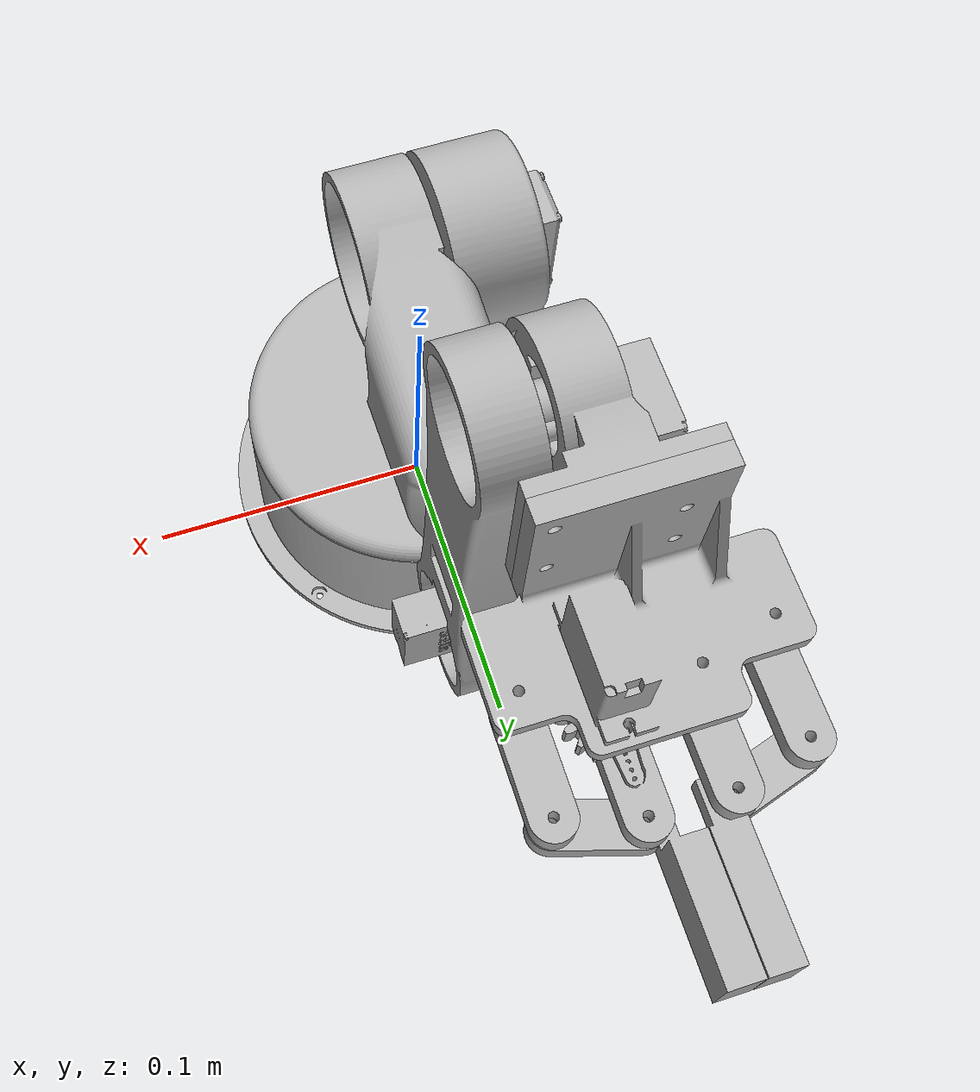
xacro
<?xml version="1.0"?>
<robot xmlns:xacro="http://www.ros.org/wiki/xacro" name="robotic_arm_pjbl">
  <xacro:arg name="use_sim" default="false"/>
  <xacro:arg name="controllers_file" default=""/>

  <xacro:include filename="$(find robotic_arm_pjbl_description)/urdf/robot_body.urdf"/>
  <xacro:include filename="$(find robotic_arm_pjbl_description)/urdf/ros2_control.xacro"/>

  <link name="world"/>
  <joint name="world_fixed" type="fixed">
    <parent link="world"/><child link="base_link"/>
  </joint>

  <xacro:arm_ros2_control use_sim="$(arg use_sim)" controllers_file="$(arg controllers_file)"/>
</robot>

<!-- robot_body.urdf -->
<robot name="Robot_Arm">
  <material name="silver">
    <color rgba="0.700 0.700 0.700 1.000" />
  </material>
  <link name="base_link">
    <inertial>
      <origin rpy="0 0 0" xyz="0.000619 0.000000 0.018717" />
      <mass value="1.114575279513355" />
      <inertia ixx="1.6127e-03" ixy="2.0748e-12" ixz="-1.0808e-05" iyy="2.0397e-03" iyz="1.2818e-12" izz="3.0906e-03" />
    </inertial>
    <visual>
      <origin rpy="0 0 0" xyz="0 0 0" />
      <geometry>
        <mesh filename="package://robotic_arm_pjbl_description/meshes/base_link.stl" scale="0.001 0.001 0.001" />
      </geometry>
      <material name="silver" />
    </visual>
    <collision>
      <origin rpy="0 0 0" xyz="0 0 0" />
      <geometry>
        <mesh filename="package://robotic_arm_pjbl_description/meshes/base_link.stl" scale="0.001 0.001 0.001" />
      </geometry>
    </collision>
  </link>
  <link name="mg996R_v2_v7_1">
    <inertial>
      <origin rpy="0 0 0" xyz="-0.024374 -0.005000 -0.008802" />
      <mass value="0.24550059914585104" />
      <inertia ixx="3.7764e-05" ixy="-3.7463e-10" ixz="-5.9967e-07" iyy="6.3908e-05" iyz="1.5918e-10" izz="4.2364e-05" />
    </inertial>
    <visual>
      <origin rpy="0 0 0" xyz="-0.0145 -0.005 -0.035" />
      <geometry>
        <mesh filename="package://robotic_arm_pjbl_description/meshes/mg996R_v2_v7_1.stl" scale="0.001 0.001 0.001" />
      </geometry>
      <material name="silver" />
    </visual>
    <collision>
      <origin rpy="0 0 0" xyz="-0.0145 -0.005 -0.035" />
      <geometry>
        <mesh filename="package://robotic_arm_pjbl_description/meshes/mg996R_v2_v7_1.stl" scale="0.001 0.001 0.001" />
      </geometry>
    </collision>
  </link>
  <link name="mg996_arm_2pad_v1__1__1">
    <inertial>
      <origin rpy="0 0 0" xyz="0.000000 0.000006 0.000273" />
      <mass value="0.006005329915614658" />
      <inertia ixx="5.5260e-07" ixy="1.9079e-15" ixz="6.4677e-16" iyy="4.5595e-08" iyz="1.4501e-15" izz="5.7984e-07" />
    </inertial>
    <visual>
      <origin rpy="0 0 0" xyz="-0.0 -0.0 -0.0505" />
      <geometry>
        <mesh filename="package://robotic_arm_pjbl_description/meshes/mg996_arm_2pad_v1__1__1.stl" scale="0.001 0.001 0.001" />
      </geometry>
      <material name="silver" />
    </visual>
    <collision>
      <origin rpy="0 0 0" xyz="-0.0 -0.0 -0.0505" />
      <geometry>
        <mesh filename="package://robotic_arm_pjbl_description/meshes/mg996_arm_2pad_v1__1__1.stl" scale="0.001 0.001 0.001" />
      </geometry>
    </collision>
  </link>
  <link name="Tutup__Base_v11_1">
    <inertial>
      <origin rpy="0 0 0" xyz="-0.009973 -0.007147 0.027090" />
      <mass value="0.7070663239380128" />
      <inertia ixx="1.1866e-03" ixy="-4.0674e-05" ixz="1.4969e-04" iyy="1.1033e-03" iyz="1.9334e-04" izz="8.0066e-04" />
    </inertial>
    <visual>
      <origin rpy="0 0 0" xyz="-0.0 -6e-06 -0.0532" />
      <geometry>
        <mesh filename="package://robotic_arm_pjbl_description/meshes/Tutup__Base_v11_1.stl" scale="0.001 0.001 0.001" />
      </geometry>
      <material name="silver" />
    </visual>
    <collision>
      <origin rpy="0 0 0" xyz="-0.0 -6e-06 -0.0532" />
      <geometry>
        <mesh filename="package://robotic_arm_pjbl_description/meshes/Tutup__Base_v11_1.stl" scale="0.001 0.001 0.001" />
      </geometry>
    </collision>
  </link>
  <link name="mg996_arm_2pad_v1_1">
    <inertial>
      <origin rpy="0 0 0" xyz="-0.000221 0.000163 0.000000" />
      <mass value="0.006005329915614658" />
      <inertia ixx="5.7984e-07" ixy="-1.4192e-15" ixz="-2.1369e-15" iyy="4.5609e-08" iyz="-2.6547e-09" izz="5.5259e-07" />
    </inertial>
    <visual>
      <origin rpy="0 0 0" xyz="0.006406 0.020205 -0.122346" />
      <geometry>
        <mesh filename="package://robotic_arm_pjbl_description/meshes/mg996_arm_2pad_v1_1.stl" scale="0.001 0.001 0.001" />
      </geometry>
      <material name="silver" />
    </visual>
    <collision>
      <origin rpy="0 0 0" xyz="0.006406 0.020205 -0.122346" />
      <geometry>
        <mesh filename="package://robotic_arm_pjbl_description/meshes/mg996_arm_2pad_v1_1.stl" scale="0.001 0.001 0.001" />
      </geometry>
    </collision>
  </link>
  <link name="Link_2_v15_1">
    <inertial>
      <origin rpy="0 0 0" xyz="0.005973 0.057708 0.000453" />
      <mass value="1.1593082559359793" />
      <inertia ixx="2.0213e-03" ixy="3.6090e-05" ixz="6.7725e-07" iyy="3.4611e-04" iyz="-5.9692e-06" izz="1.8724e-03" />
    </inertial>
    <visual>
      <origin rpy="0 0 0" xyz="0.003707 0.020139 -0.122346" />
      <geometry>
        <mesh filename="package://robotic_arm_pjbl_description/meshes/Link_2_v15_1.stl" scale="0.001 0.001 0.001" />
      </geometry>
      <material name="silver" />
    </visual>
    <collision>
      <origin rpy="0 0 0" xyz="0.003707 0.020139 -0.122346" />
      <geometry>
        <mesh filename="package://robotic_arm_pjbl_description/meshes/Link_2_v15_1.stl" scale="0.001 0.001 0.001" />
      </geometry>
    </collision>
  </link>
  <link name="MG90S_Servo_Horn__2_spork__v1_1">
    <inertial>
      <origin rpy="0 0 0" xyz="0.003641 0.020481 -0.068052" />
      <mass value="0.0023293743845412967" />
      <inertia ixx="1.4281e-07" ixy="3.7628e-15" ixz="-1.8397e-15" iyy="8.2114e-09" iyz="-6.8679e-10" izz="1.3937e-07" />
    </inertial>
    <visual>
      <origin rpy="0 0 0" xyz="-0.002729 -0.084475 -0.191053" />
      <geometry>
        <mesh filename="package://robotic_arm_pjbl_description/meshes/MG90S_Servo_Horn__2_spork__v1_1.stl" scale="0.001 0.001 0.001" />
      </geometry>
      <material name="silver" />
    </visual>
    <collision>
      <origin rpy="0 0 0" xyz="-0.002729 -0.084475 -0.191053" />
      <geometry>
        <mesh filename="package://robotic_arm_pjbl_description/meshes/MG90S_Servo_Horn__2_spork__v1_1.stl" scale="0.001 0.001 0.001" />
      </geometry>
    </collision>
  </link>
  <link name="MG90S_Servo_Horn__2_spork__v1__1__1">
    <inertial>
      <origin rpy="0 0 0" xyz="0.004089 -0.098038 0.098446" />
      <mass value="0.0023293743845412967" />
      <inertia ixx="1.4281e-07" ixy="7.8980e-16" ixz="1.1864e-15" iyy="1.3937e-07" iyz="6.8679e-10" izz="8.2114e-09" />
    </inertial>
    <visual>
      <origin rpy="0 0 0" xyz="-0.012981 -0.202346 -0.149323" />
      <geometry>
        <mesh filename="package://robotic_arm_pjbl_description/meshes/MG90S_Servo_Horn__2_spork__v1__1__1.stl" scale="0.001 0.001 0.001" />
      </geometry>
      <material name="silver" />
    </visual>
    <collision>
      <origin rpy="0 0 0" xyz="-0.012981 -0.202346 -0.149323" />
      <geometry>
        <mesh filename="package://robotic_arm_pjbl_description/meshes/MG90S_Servo_Horn__2_spork__v1__1__1.stl" scale="0.001 0.001 0.001" />
      </geometry>
    </collision>
  </link>
  <link name="Gripper_Paralel_SG90_M5_v5_1">
    <inertial>
      <origin rpy="0 0 0" xyz="0.029393 -0.083535 0.069537" />
      <mass value="0.18310530252689874" />
      <inertia ixx="5.7390e-05" ixy="-3.7889e-06" ixz="-5.3392e-07" iyy="7.5492e-05" iyz="1.5480e-05" izz="7.4260e-05" />
    </inertial>
    <visual>
      <origin rpy="0 0 0" xyz="0.027008 -0.232391 -0.168029" />
      <geometry>
        <mesh filename="package://robotic_arm_pjbl_description/meshes/Gripper_Paralel_SG90_M5_v5_1.stl" scale="0.001 0.001 0.001" />
      </geometry>
      <material name="silver" />
    </visual>
    <collision>
      <origin rpy="0 0 0" xyz="0.027008 -0.232391 -0.168029" />
      <geometry>
        <mesh filename="package://robotic_arm_pjbl_description/meshes/Gripper_Paralel_SG90_M5_v5_1.stl" scale="0.001 0.001 0.001" />
      </geometry>
    </collision>
  </link>
  <link name="link_3_v8_1">
    <inertial>
      <origin rpy="0 0 0" xyz="-0.000346 0.027380 -0.007778" />
      <mass value="0.5013830172546899" />
      <inertia ixx="8.1084e-04" ixy="-3.0076e-08" ixz="-8.6448e-06" iyy="7.6865e-04" iyz="3.5065e-06" izz="7.9942e-05" />
    </inertial>
    <visual>
      <origin rpy="0 0 0" xyz="-0.018357 -0.077013 -0.19383" />
      <geometry>
        <mesh filename="package://robotic_arm_pjbl_description/meshes/link_3_v8_1.stl" scale="0.001 0.001 0.001" />
      </geometry>
      <material name="silver" />
    </visual>
    <collision>
      <origin rpy="0 0 0" xyz="-0.018357 -0.077013 -0.19383" />
      <geometry>
        <mesh filename="package://robotic_arm_pjbl_description/meshes/link_3_v8_1.stl" scale="0.001 0.001 0.001" />
      </geometry>
    </collision>
  </link>
  <link name="Mounting_Gripper_v10_1">
    <inertial>
      <origin rpy="0 0 0" xyz="0.005278 -0.074495 0.097622" />
      <mass value="0.1387810088485666" />
      <inertia ixx="5.3073e-05" ixy="1.1204e-06" ixz="6.6532e-08" iyy="3.2264e-05" iyz="-3.8630e-08" izz="4.3861e-05" />
    </inertial>
    <visual>
      <origin rpy="0 0 0" xyz="0.004351 -0.19365 -0.150243" />
      <geometry>
        <mesh filename="package://robotic_arm_pjbl_description/meshes/Mounting_Gripper_v10_1.stl" scale="0.001 0.001 0.001" />
      </geometry>
      <material name="silver" />
    </visual>
    <collision>
      <origin rpy="0 0 0" xyz="0.004351 -0.19365 -0.150243" />
      <geometry>
        <mesh filename="package://robotic_arm_pjbl_description/meshes/Mounting_Gripper_v10_1.stl" scale="0.001 0.001 0.001" />
      </geometry>
    </collision>
  </link>
  <link name="MG90S_v5_1">
    <inertial>
      <origin rpy="0 0 0" xyz="0.017835 -0.000089 0.004771" />
      <mass value="0.022767916386716793" />
      <inertia ixx="1.8048e-06" ixy="1.9830e-09" ixz="-2.2121e-07" iyy="3.1547e-06" iyz="-2.8523e-11" izz="2.1095e-06" />
    </inertial>
    <visual>
      <origin rpy="0 0 0" xyz="-0.007150 -0.105000 -0.123000" />
      <geometry>
        <mesh filename="package://robotic_arm_pjbl_description/meshes/MG90S_v5_1.stl" scale="0.001 0.001 0.001" />
      </geometry>
      <material name="silver" />
    </visual>
    <collision>
      <origin rpy="0 0 0" xyz="-0.007150 -0.105000 -0.123000" />
      <geometry>
        <mesh filename="package://robotic_arm_pjbl_description/meshes/MG90S_v5_1.stl" scale="0.001 0.001 0.001" />
      </geometry>
    </collision>
  </link>
  <link name="MG90S_v1_1">
    <inertial>
      <origin rpy="0 0 0" xyz="-0.020595 0.004779 -0.000026" />
      <mass value="0.02276801022285205" />
      <inertia ixx="1.8049e-06" ixy="2.2122e-07" ixz="3.3356e-10" iyy="2.1096e-06" iyz="-1.0973e-08" izz="3.1546e-06" />
    </inertial>
    <visual>
      <origin rpy="0 0 0" xyz="-0.016250 -0.104300 -0.247800" />
      <geometry>
        <mesh filename="package://robotic_arm_pjbl_description/meshes/MG90S_v1_1.stl" scale="0.001 0.001 0.001" />
      </geometry>
      <material name="silver" />
    </visual>
    <collision>
      <origin rpy="0 0 0" xyz="-0.016250 -0.104300 -0.247800" />
      <geometry>
        <mesh filename="package://robotic_arm_pjbl_description/meshes/MG90S_v1_1.stl" scale="0.001 0.001 0.001" />
      </geometry>
    </collision>
  </link>
  <link name="mg996R_v2_v7__1__1">
    <inertial>
      <origin rpy="0 0 0" xyz="-0.011579 -0.004386 -0.024399" />
      <mass value="0.24550059914585104" />
      <inertia ixx="4.2364e-05" ixy="2.9807e-09" ixz="-5.9966e-07" iyy="6.3907e-05" iyz="1.3726e-07" izz="3.7765e-05" />
    </inertial>
    <visual>
      <origin rpy="0 0 0" xyz="0.019623 0.015604 -0.136878" />
      <geometry>
        <mesh filename="package://robotic_arm_pjbl_description/meshes/mg996R_v2_v7__1__1.stl" scale="0.001 0.001 0.001" />
      </geometry>
      <material name="silver" />
    </visual>
    <collision>
      <origin rpy="0 0 0" xyz="0.019623 0.015604 -0.136878" />
      <geometry>
        <mesh filename="package://robotic_arm_pjbl_description/meshes/mg996R_v2_v7__1__1.stl" scale="0.001 0.001 0.001" />
      </geometry>
    </collision>
  </link>
  <link name="gripper_gear_a_1">
    <inertial>
      <origin rpy="0 0 0" xyz="0.000022 0.008095 -0.001013" />
      <mass value="0.023262242930303698" />
      <inertia ixx="2.8852e-06" ixy="-9.5985e-09" ixz="4.2138e-11" iyy="5.2168e-07" iyz="1.3670e-08" izz="3.2490e-06" />
    </inertial>
    <visual>
      <origin rpy="0 0 0" xyz="-0.010800 -0.164110 -0.216730" />
      <geometry>
        <mesh filename="package://robotic_arm_pjbl_description/meshes/gripper_gear_a_1.stl" scale="0.001 0.001 0.001" />
      </geometry>
      <material name="silver" />
    </visual>
    <collision>
      <origin rpy="0 0 0" xyz="-0.010800 -0.164110 -0.216730" />
      <geometry>
        <mesh filename="package://robotic_arm_pjbl_description/meshes/gripper_gear_a_1.stl" scale="0.001 0.001 0.001" />
      </geometry>
    </collision>
  </link>
  <link name="gripper_gear_b_1">
    <inertial>
      <origin rpy="0 0 0" xyz="-0.000044 0.008349 -0.001099" />
      <mass value="0.02378380547257021" />
      <inertia ixx="2.9072e-06" ixy="9.9205e-09" ixz="5.1941e-11" iyy="5.2436e-07" iyz="-1.4474e-08" izz="3.2887e-06" />
    </inertial>
    <visual>
      <origin rpy="0 0 0" xyz="0.009400 -0.164110 -0.216730" />
      <geometry>
        <mesh filename="package://robotic_arm_pjbl_description/meshes/gripper_gear_b_1.stl" scale="0.001 0.001 0.001" />
      </geometry>
      <material name="silver" />
    </visual>
    <collision>
      <origin rpy="0 0 0" xyz="0.009400 -0.164110 -0.216730" />
      <geometry>
        <mesh filename="package://robotic_arm_pjbl_description/meshes/gripper_gear_b_1.stl" scale="0.001 0.001 0.001" />
      </geometry>
    </collision>
  </link>
  <link name="gripper_link_left_1">
    <inertial>
      <origin rpy="0 0 0" xyz="-0.000001 0.012772 -0.001396" />
      <mass value="0.016717941483359883" />
      <inertia ixx="1.6063e-06" ixy="-5.7333e-09" ixz="-3.0020e-11" iyy="2.1413e-07" iyz="-7.8850e-09" izz="1.7200e-06" />
    </inertial>
    <visual>
      <origin rpy="0 0 0" xyz="-0.030030 -0.158480 -0.217020" />
      <geometry>
        <mesh filename="package://robotic_arm_pjbl_description/meshes/gripper_link_left_1.stl" scale="0.001 0.001 0.001" />
      </geometry>
      <material name="silver" />
    </visual>
    <collision>
      <origin rpy="0 0 0" xyz="-0.030030 -0.158480 -0.217020" />
      <geometry>
        <mesh filename="package://robotic_arm_pjbl_description/meshes/gripper_link_left_1.stl" scale="0.001 0.001 0.001" />
      </geometry>
    </collision>
  </link>
  <link name="gripper_link_right_1">
    <inertial>
      <origin rpy="0 0 0" xyz="0.000001 0.012782 -0.001396" />
      <mass value="0.016717941483359845" />
      <inertia ixx="1.6063e-06" ixy="5.7334e-09" ixz="3.0035e-11" iyy="2.1413e-07" iyz="-7.8850e-09" izz="1.7200e-06" />
    </inertial>
    <visual>
      <origin rpy="0 0 0" xyz="0.028630 -0.158470 -0.217020" />
      <geometry>
        <mesh filename="package://robotic_arm_pjbl_description/meshes/gripper_link_right_1.stl" scale="0.001 0.001 0.001" />
      </geometry>
      <material name="silver" />
    </visual>
    <collision>
      <origin rpy="0 0 0" xyz="0.028630 -0.158470 -0.217020" />
      <geometry>
        <mesh filename="package://robotic_arm_pjbl_description/meshes/gripper_link_right_1.stl" scale="0.001 0.001 0.001" />
      </geometry>
    </collision>
  </link>
  <link name="gripper_finger_left_1">
    <inertial>
      <origin rpy="0 0 0" xyz="-0.001489 0.014975 -0.001265" />
      <mass value="0.051741877862863876" />
      <inertia ixx="1.1089e-05" ixy="4.0169e-06" ixz="8.5147e-07" iyy="4.7434e-06" iyz="-1.5048e-06" izz="1.3300e-05" />
    </inertial>
    <visual>
      <origin rpy="0 0 0" xyz="-0.010800 -0.189280 -0.213950" />
      <geometry>
        <mesh filename="package://robotic_arm_pjbl_description/meshes/gripper_finger_left_1.stl" scale="0.001 0.001 0.001" />
      </geometry>
      <material name="silver" />
    </visual>
    <collision>
      <origin rpy="0 0 0" xyz="-0.010800 -0.189280 -0.213950" />
      <geometry>
        <mesh filename="package://robotic_arm_pjbl_description/meshes/gripper_finger_left_1.stl" scale="0.001 0.001 0.001" />
      </geometry>
    </collision>
  </link>
  <link name="gripper_finger_right_1">
    <inertial>
      <origin rpy="0 0 0" xyz="0.001489 0.014975 -0.001255" />
      <mass value="0.05174187786286397" />
      <inertia ixx="1.1089e-05" ixy="-4.0169e-06" ixz="-8.5147e-07" iyy="4.7434e-06" iyz="-1.5048e-06" izz="1.3300e-05" />
    </inertial>
    <visual>
      <origin rpy="0 0 0" xyz="0.009400 -0.189280 -0.213940" />
      <geometry>
        <mesh filename="package://robotic_arm_pjbl_description/meshes/gripper_finger_right_1.stl" scale="0.001 0.001 0.001" />
      </geometry>
      <material name="silver" />
    </visual>
    <collision>
      <origin rpy="0 0 0" xyz="0.009400 -0.189280 -0.213940" />
      <geometry>
        <mesh filename="package://robotic_arm_pjbl_description/meshes/gripper_finger_right_1.stl" scale="0.001 0.001 0.001" />
      </geometry>
    </collision>
  </link>
  <joint name="base_to_servo1" type="fixed">
    <origin rpy="0 0 0" xyz="0.014500 0.005000 0.035000" />
    <parent link="base_link" />
    <child link="mg996R_v2_v7_1" />
  </joint>
  <joint name="base" type="revolute">
    <origin rpy="0 0 0" xyz="-0.014500 -0.005000 0.015500" />
    <parent link="mg996R_v2_v7_1" />
    <child link="mg996_arm_2pad_v1__1__1" />
    <axis xyz="0.0 0.0 1.0" />
    <limit effort="100" lower="0.0" upper="3.141593" velocity="100" />
  </joint>
  <joint name="arm1_to_tutup" type="fixed">
    <origin rpy="0 0 0" xyz="0.000000 0.000006 0.002700" />
    <parent link="mg996_arm_2pad_v1__1__1" />
    <child link="Tutup__Base_v11_1" />
  </joint>
  <joint name="shoulder" type="revolute">
    <origin rpy="0 0 0" xyz="0.013217 -0.004601 -0.014532" />
    <parent link="mg996R_v2_v7__1__1" />
    <child link="mg996_arm_2pad_v1_1" />
    <axis xyz="0.999699 0.024528 0.0" />
    <limit effort="100" lower="0.0" upper="3.141593" velocity="100" />
  </joint>
  <joint name="arm2_to_link2" type="fixed">
    <origin rpy="0 0 0" xyz="0.002699 0.000066 0.000000" />
    <parent link="mg996_arm_2pad_v1_1" />
    <child link="Link_2_v15_1" />
  </joint>
  <joint name="link2_to_horn1" type="fixed">
    <origin rpy="0 0 0" xyz="0.006436 0.104614 0.068707" />
    <parent link="Link_2_v15_1" />
    <child link="MG90S_Servo_Horn__2_spork__v1_1" />
  </joint>
  <joint name="link3_to_horn2" type="fixed">
    <origin rpy="0 0 0" xyz="-0.005376 0.125333 -0.044507" />
    <parent link="link_3_v8_1" />
    <child link="MG90S_Servo_Horn__2_spork__v1__1__1" />
  </joint>
  <joint name="mounting_to_gripper" type="fixed">
    <origin rpy="0 0 0" xyz="-0.022657 0.038741 0.017786" />
    <parent link="Mounting_Gripper_v10_1" />
    <child link="Gripper_Paralel_SG90_M5_v5_1" />
  </joint>
  <joint name="servo3_to_link3" type="fixed">
    <origin rpy="0 0 0" xyz="0.011207 -0.027987 0.070830" />
    <parent link="MG90S_v5_1" />
    <child link="link_3_v8_1" />
  </joint>
  <joint name="servo4_to_mounting" type="fixed">
    <origin rpy="0 0 0" xyz="-0.020601 0.089350 -0.097557" />
    <parent link="MG90S_v1_1" />
    <child link="Mounting_Gripper_v10_1" />
  </joint>
  <joint name="elbow" type="revolute">
    <origin rpy="0 0 0" xyz="0.004421 0.020525 -0.068053" />
    <parent link="MG90S_Servo_Horn__2_spork__v1_1" />
    <child link="MG90S_v5_1" />
    <axis xyz="-0.999699 -0.024528 0.0" />
    <limit effort="100" lower="0.0" upper="3.141593" velocity="100" />
  </joint>
  <joint name="wrist" type="revolute">
    <origin rpy="0 0 0" xyz="0.003269 -0.098046 0.098477" />
    <parent link="MG90S_Servo_Horn__2_spork__v1__1__1" />
    <child link="MG90S_v1_1" />
    <axis xyz="0.999699 0.024528 -0.0" />
    <limit effort="100" lower="0.0" upper="3.141593" velocity="100" />
  </joint>
  <joint name="tutup_to_servo2" type="fixed">
    <origin rpy="0 0 0" xyz="-0.019623 -0.015610 0.083678" />
    <parent link="Tutup__Base_v11_1" />
    <child link="mg996R_v2_v7__1__1" />
  </joint>
  <joint name="gripper_servo" type="revolute">
    <origin rpy="0 0 0" xyz="0.037808 -0.068281 0.048701" />
    <parent link="Gripper_Paralel_SG90_M5_v5_1" />
    <child link="gripper_gear_a_1" />
    <axis xyz="0.002699 -0.110002 -0.993928" />
    <limit effort="100" lower="0.0" upper="0.573515" velocity="100" />
  </joint>
  <joint name="gripper_gear_b" type="revolute">
    <origin rpy="0 0 0" xyz="0.017608 -0.068281 0.048701" />
    <parent link="Gripper_Paralel_SG90_M5_v5_1" />
    <child link="gripper_gear_b_1" />
    <axis xyz="-0.002699 0.110002 0.993928" />
    <limit effort="100" lower="0.0" upper="0.573515" velocity="100" />
  <mimic joint="gripper_servo" multiplier="1.0" offset="0" /></joint>
  <joint name="gripper_link_left" type="revolute">
    <origin rpy="0 0 0" xyz="0.057038 -0.073911 0.048991" />
    <parent link="Gripper_Paralel_SG90_M5_v5_1" />
    <child link="gripper_link_left_1" />
    <axis xyz="-0.002699 0.110002 0.993928" />
    <limit effort="100" lower="-0.573515" upper="0.0" velocity="100" />
  <mimic joint="gripper_servo" multiplier="-1.0" offset="0" /></joint>
  <joint name="gripper_link_right" type="revolute">
    <origin rpy="0 0 0" xyz="-0.001622 -0.073921 0.048991" />
    <parent link="Gripper_Paralel_SG90_M5_v5_1" />
    <child link="gripper_link_right_1" />
    <axis xyz="-0.002699 0.110002 0.993928" />
    <limit effort="100" lower="0.0" upper="0.573515" velocity="100" />
  <mimic joint="gripper_servo" multiplier="1.0" offset="0" /></joint>
  <joint name="gripper_finger_left" type="revolute">
    <origin rpy="0 0 0" xyz="0.000000 0.025170 -0.002780" />
    <parent link="gripper_gear_a_1" />
    <child link="gripper_finger_left_1" />
    <axis xyz="-0.002699 0.110002 0.993928" />
    <limit effort="100" lower="0.0" upper="0.573515" velocity="100" />
  <mimic joint="gripper_servo" multiplier="1.0" offset="0" /></joint>
  <joint name="gripper_finger_right" type="revolute">
    <origin rpy="0 0 0" xyz="0.000000 0.025170 -0.002790" />
    <parent link="gripper_gear_b_1" />
    <child link="gripper_finger_right_1" />
    <axis xyz="-0.002699 0.110002 0.993928" />
    <limit effort="100" lower="-0.573515" upper="0.0" velocity="100" />
  <mimic joint="gripper_servo" multiplier="-1.0" offset="0" /></joint>
</robot>
